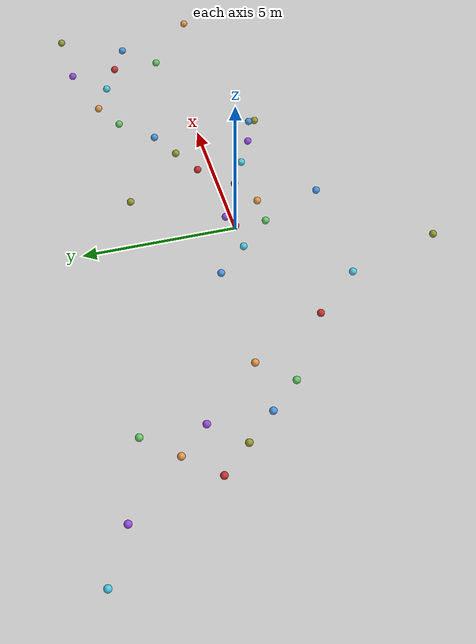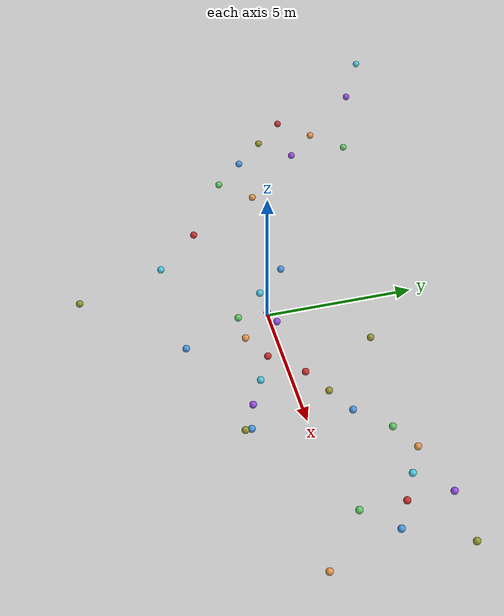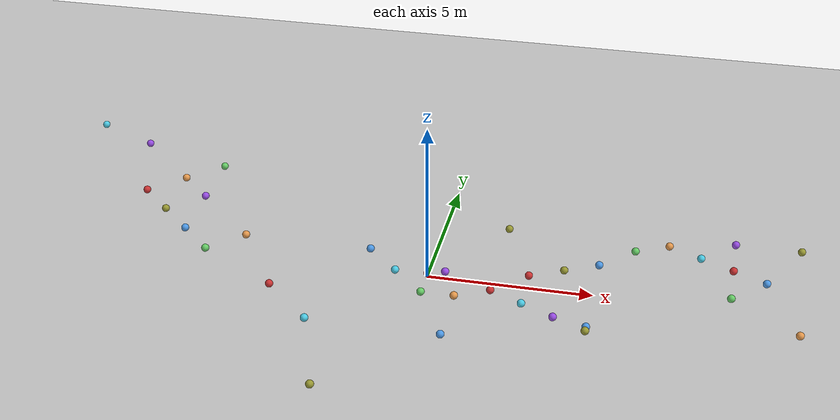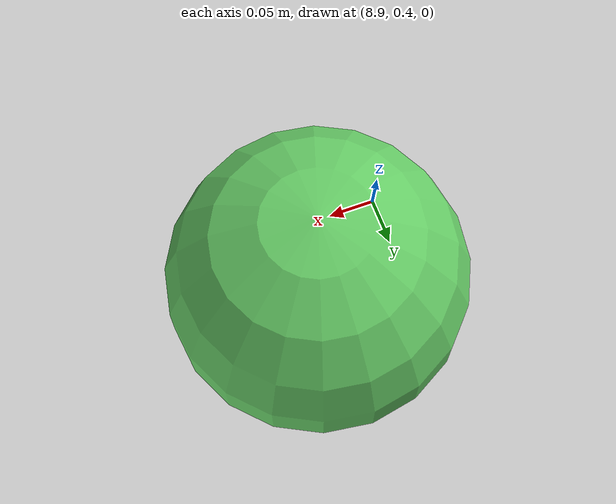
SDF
<?xml version="1.0" ?>
<sdf version="1.9">
  <world name="traveling_ethiopia_figure5">
    <gravity>0 0 -9.81</gravity>
    <physics name="ode" type="ode">
      <real_time_update_rate>1000</real_time_update_rate>
      <max_step_size>0.001</max_step_size>
    </physics>

    <include><uri>model://ground_plane</uri></include>
    <include><uri>model://sun</uri></include>

    <model name="Addis_Ababa">
      <static>true</static>
      <pose>0.0 0.0 0.12 0 0 0</pose>
      <link name="l">
        <visual name="v">
          <geometry><sphere><radius>0.12</radius></sphere></geometry>
          <material><ambient>0.8 0.2 0.2 1</ambient></material>
        </visual>
      </link>
    </model>
    <model name="Debre_Birhan">
      <static>true</static>
      <pose>2.0 3.0 0.12 0 0 0</pose>
      <link name="l">
        <visual name="v">
          <geometry><sphere><radius>0.12</radius></sphere></geometry>
          <material><ambient>0.6 0.6 0.2 1</ambient></material>
        </visual>
      </link>
    </model>
    <model name="Ambo">
      <static>true</static>
      <pose>-2.0 1.0 0.12 0 0 0</pose>
      <link name="l">
        <visual name="v">
          <geometry><sphere><radius>0.12</radius></sphere></geometry>
          <material><ambient>0.3 0.6 0.9 1</ambient></material>
        </visual>
      </link>
    </model>
    <model name="Nekemte">
      <static>true</static>
      <pose>-8.0 5.0 0.12 0 0 0</pose>
      <link name="l">
        <visual name="v">
          <geometry><sphere><radius>0.12</radius></sphere></geometry>
          <material><ambient>0.4 0.8 0.4 1</ambient></material>
        </visual>
      </link>
    </model>
    <model name="Gimbi">
      <static>true</static>
      <pose>-9.0 4.0 0.12 0 0 0</pose>
      <link name="l">
        <visual name="v">
          <geometry><sphere><radius>0.12</radius></sphere></geometry>
          <material><ambient>0.9 0.6 0.3 1</ambient></material>
        </visual>
      </link>
    </model>
    <model name="Dembi_Dolo">
      <static>true</static>
      <pose>-11.0 6.0 0.12 0 0 0</pose>
      <link name="l">
        <visual name="v">
          <geometry><sphere><radius>0.12</radius></sphere></geometry>
          <material><ambient>0.6 0.3 0.9 1</ambient></material>
        </visual>
      </link>
    </model>
    <model name="Gambella">
      <static>true</static>
      <pose>-13.0 7.0 0.12 0 0 0</pose>
      <link name="l">
        <visual name="v">
          <geometry><sphere><radius>0.12</radius></sphere></geometry>
          <material><ambient>0.3 0.8 0.9 1</ambient></material>
        </visual>
      </link>
    </model>
    <model name="Gore">
      <static>true</static>
      <pose>-10.0 3.0 0.12 0 0 0</pose>
      <link name="l">
        <visual name="v">
          <geometry><sphere><radius>0.12</radius></sphere></geometry>
          <material><ambient>0.8 0.2 0.2 1</ambient></material>
        </visual>
      </link>
    </model>
    <model name="Tepi">
      <static>true</static>
      <pose>-9.0 2.0 0.12 0 0 0</pose>
      <link name="l">
        <visual name="v">
          <geometry><sphere><radius>0.12</radius></sphere></geometry>
          <material><ambient>0.6 0.6 0.2 1</ambient></material>
        </visual>
      </link>
    </model>
    <model name="Mizan_Teferi">
      <static>true</static>
      <pose>-8.0 1.0 0.12 0 0 0</pose>
      <link name="l">
        <visual name="v">
          <geometry><sphere><radius>0.12</radius></sphere></geometry>
          <material><ambient>0.3 0.6 0.9 1</ambient></material>
        </visual>
      </link>
    </model>
    <model name="Bonga">
      <static>true</static>
      <pose>-7.0 0.0 0.12 0 0 0</pose>
      <link name="l">
        <visual name="v">
          <geometry><sphere><radius>0.12</radius></sphere></geometry>
          <material><ambient>0.4 0.8 0.4 1</ambient></material>
        </visual>
      </link>
    </model>
    <model name="Jimma">
      <static>true</static>
      <pose>-6.0 1.0 0.12 0 0 0</pose>
      <link name="l">
        <visual name="v">
          <geometry><sphere><radius>0.12</radius></sphere></geometry>
          <material><ambient>0.9 0.6 0.3 1</ambient></material>
        </visual>
      </link>
    </model>
    <model name="Bedelle">
      <static>true</static>
      <pose>-8.0 3.0 0.12 0 0 0</pose>
      <link name="l">
        <visual name="v">
          <geometry><sphere><radius>0.12</radius></sphere></geometry>
          <material><ambient>0.6 0.3 0.9 1</ambient></material>
        </visual>
      </link>
    </model>
    <model name="Wolaita_Sodo">
      <static>true</static>
      <pose>-3.0 -3.0 0.12 0 0 0</pose>
      <link name="l">
        <visual name="v">
          <geometry><sphere><radius>0.12</radius></sphere></geometry>
          <material><ambient>0.3 0.8 0.9 1</ambient></material>
        </visual>
      </link>
    </model>
    <model name="Dawro">
      <static>true</static>
      <pose>-4.5 -1.5 0.12 0 0 0</pose>
      <link name="l">
        <visual name="v">
          <geometry><sphere><radius>0.12</radius></sphere></geometry>
          <material><ambient>0.8 0.2 0.2 1</ambient></material>
        </visual>
      </link>
    </model>
    <model name="Dilla">
      <static>true</static>
      <pose>-2.0 -6.0 0.12 0 0 0</pose>
      <link name="l">
        <visual name="v">
          <geometry><sphere><radius>0.12</radius></sphere></geometry>
          <material><ambient>0.6 0.6 0.2 1</ambient></material>
        </visual>
      </link>
    </model>
    <model name="Hawassa">
      <static>true</static>
      <pose>1.0 -3.0 0.12 0 0 0</pose>
      <link name="l">
        <visual name="v">
          <geometry><sphere><radius>0.12</radius></sphere></geometry>
          <material><ambient>0.3 0.6 0.9 1</ambient></material>
        </visual>
      </link>
    </model>
    <model name="Hossana">
      <static>true</static>
      <pose>0.0 -1.0 0.12 0 0 0</pose>
      <link name="l">
        <visual name="v">
          <geometry><sphere><radius>0.12</radius></sphere></geometry>
          <material><ambient>0.4 0.8 0.4 1</ambient></material>
        </visual>
      </link>
    </model>
    <model name="Shashemene">
      <static>true</static>
      <pose>1.0 -1.0 0.12 0 0 0</pose>
      <link name="l">
        <visual name="v">
          <geometry><sphere><radius>0.12</radius></sphere></geometry>
          <material><ambient>0.9 0.6 0.3 1</ambient></material>
        </visual>
      </link>
    </model>
    <model name="Butajira">
      <static>true</static>
      <pose>0.5 0.2 0.12 0 0 0</pose>
      <link name="l">
        <visual name="v">
          <geometry><sphere><radius>0.12</radius></sphere></geometry>
          <material><ambient>0.6 0.3 0.9 1</ambient></material>
        </visual>
      </link>
    </model>
    <model name="Wolkite">
      <static>true</static>
      <pose>-1.0 0.0 0.12 0 0 0</pose>
      <link name="l">
        <visual name="v">
          <geometry><sphere><radius>0.12</radius></sphere></geometry>
          <material><ambient>0.3 0.8 0.9 1</ambient></material>
        </visual>
      </link>
    </model>
    <model name="Assela">
      <static>true</static>
      <pose>3.0 0.5 0.12 0 0 0</pose>
      <link name="l">
        <visual name="v">
          <geometry><sphere><radius>0.12</radius></sphere></geometry>
          <material><ambient>0.8 0.2 0.2 1</ambient></material>
        </visual>
      </link>
    </model>
    <model name="Adama">
      <static>true</static>
      <pose>4.0 1.0 0.12 0 0 0</pose>
      <link name="l">
        <visual name="v">
          <geometry><sphere><radius>0.12</radius></sphere></geometry>
          <material><ambient>0.6 0.6 0.2 1</ambient></material>
        </visual>
      </link>
    </model>
    <model name="Matahara">
      <static>true</static>
      <pose>5.0 1.5 0.12 0 0 0</pose>
      <link name="l">
        <visual name="v">
          <geometry><sphere><radius>0.12</radius></sphere></geometry>
          <material><ambient>0.3 0.6 0.9 1</ambient></material>
        </visual>
      </link>
    </model>
    <model name="Awash">
      <static>true</static>
      <pose>6.0 2.5 0.12 0 0 0</pose>
      <link name="l">
        <visual name="v">
          <geometry><sphere><radius>0.12</radius></sphere></geometry>
          <material><ambient>0.4 0.8 0.4 1</ambient></material>
        </visual>
      </link>
    </model>
    <model name="Chiro">
      <static>true</static>
      <pose>7.0 3.0 0.12 0 0 0</pose>
      <link name="l">
        <visual name="v">
          <geometry><sphere><radius>0.12</radius></sphere></geometry>
          <material><ambient>0.9 0.6 0.3 1</ambient></material>
        </visual>
      </link>
    </model>
    <model name="Dire_Dawa">
      <static>true</static>
      <pose>9.0 3.5 0.12 0 0 0</pose>
      <link name="l">
        <visual name="v">
          <geometry><sphere><radius>0.12</radius></sphere></geometry>
          <material><ambient>0.6 0.3 0.9 1</ambient></material>
        </visual>
      </link>
    </model>
    <model name="Harar">
      <static>true</static>
      <pose>8.0 2.5 0.12 0 0 0</pose>
      <link name="l">
        <visual name="v">
          <geometry><sphere><radius>0.12</radius></sphere></geometry>
          <material><ambient>0.3 0.8 0.9 1</ambient></material>
        </visual>
      </link>
    </model>
    <model name="Babille">
      <static>true</static>
      <pose>9.0 2.0 0.12 0 0 0</pose>
      <link name="l">
        <visual name="v">
          <geometry><sphere><radius>0.12</radius></sphere></geometry>
          <material><ambient>0.8 0.2 0.2 1</ambient></material>
        </visual>
      </link>
    </model>
    <model name="Jigjiga">
      <static>true</static>
      <pose>11.0 3.5 0.12 0 0 0</pose>
      <link name="l">
        <visual name="v">
          <geometry><sphere><radius>0.12</radius></sphere></geometry>
          <material><ambient>0.6 0.6 0.2 1</ambient></material>
        </visual>
      </link>
    </model>
    <model name="Dega_Habur">
      <static>true</static>
      <pose>10.0 1.5 0.12 0 0 0</pose>
      <link name="l">
        <visual name="v">
          <geometry><sphere><radius>0.12</radius></sphere></geometry>
          <material><ambient>0.3 0.6 0.9 1</ambient></material>
        </visual>
      </link>
    </model>
    <model name="Kebri_Dehar">
      <static>true</static>
      <pose>9.0 0.5 0.12 0 0 0</pose>
      <link name="l">
        <visual name="v">
          <geometry><sphere><radius>0.12</radius></sphere></geometry>
          <material><ambient>0.4 0.8 0.4 1</ambient></material>
        </visual>
      </link>
    </model>
    <model name="Gode">
      <static>true</static>
      <pose>11.0 -1.0 0.12 0 0 0</pose>
      <link name="l">
        <visual name="v">
          <geometry><sphere><radius>0.12</radius></sphere></geometry>
          <material><ambient>0.9 0.6 0.3 1</ambient></material>
        </visual>
      </link>
    </model>
    <model name="Goba">
      <static>true</static>
      <pose>4.0 -1.5 0.12 0 0 0</pose>
      <link name="l">
        <visual name="v">
          <geometry><sphere><radius>0.12</radius></sphere></geometry>
          <material><ambient>0.6 0.3 0.9 1</ambient></material>
        </visual>
      </link>
    </model>
    <model name="Dodolla">
      <static>true</static>
      <pose>3.0 -1.0 0.12 0 0 0</pose>
      <link name="l">
        <visual name="v">
          <geometry><sphere><radius>0.12</radius></sphere></geometry>
          <material><ambient>0.3 0.8 0.9 1</ambient></material>
        </visual>
      </link>
    </model>
    <model name="Assasa">
      <static>true</static>
      <pose>2.0 -0.5 0.12 0 0 0</pose>
      <link name="l">
        <visual name="v">
          <geometry><sphere><radius>0.12</radius></sphere></geometry>
          <material><ambient>0.8 0.2 0.2 1</ambient></material>
        </visual>
      </link>
    </model>
    <model name="Bale">
      <static>true</static>
      <pose>5.0 -2.0 0.12 0 0 0</pose>
      <link name="l">
        <visual name="v">
          <geometry><sphere><radius>0.12</radius></sphere></geometry>
          <material><ambient>0.6 0.6 0.2 1</ambient></material>
        </visual>
      </link>
    </model>
    <model name="Sof_Oumer">
      <static>true</static>
      <pose>5.0 -1.8 0.12 0 0 0</pose>
      <link name="l">
        <visual name="v">
          <geometry><sphere><radius>0.12</radius></sphere></geometry>
          <material><ambient>0.3 0.6 0.9 1</ambient></material>
        </visual>
      </link>
    </model>

    <gui fullscreen="false"/>
  </world>
</sdf>
